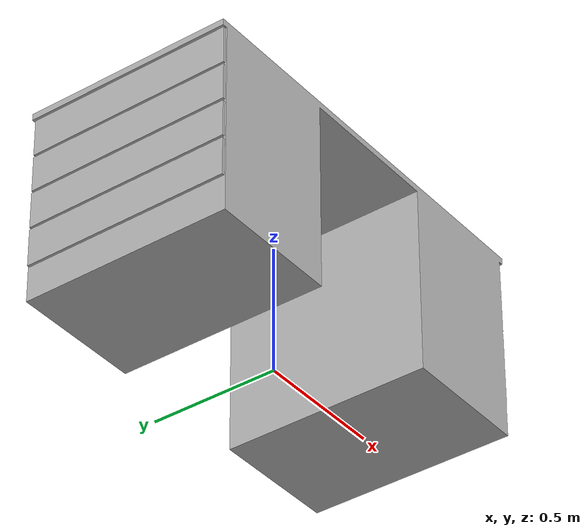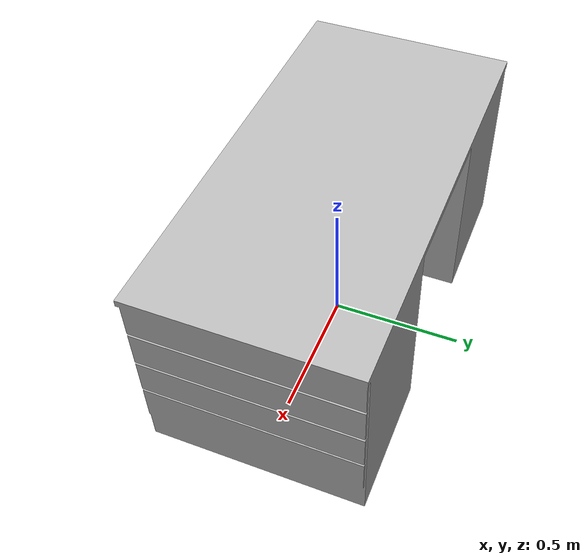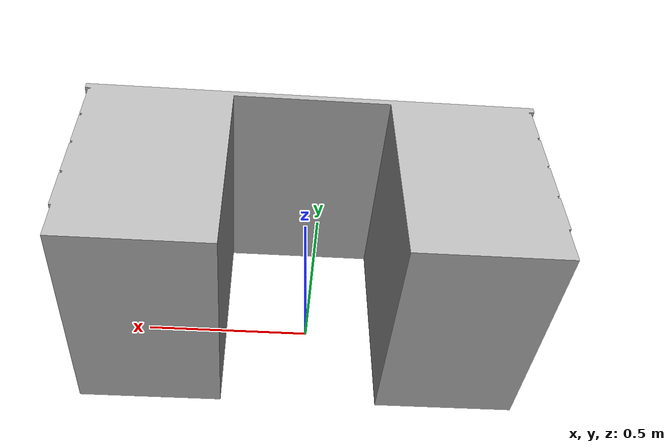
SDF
<?xml version="1.0"?>
<sdf version="1.4">
<model name="stul_160">
	<pose>0 0 0 0 0 0</pose>
	<static>true</static>
	<link name="stul_160_collision">
		<collision name="stul_160_collision">
		<geometry>
			<mesh>
				<uri>model://stul_160/meshes/model.dae</uri>

			</mesh>
		</geometry>
		</collision>
	<visual name="stul_160_mesh">
	<cast_shadows>false</cast_shadows>
		<geometry>
			<mesh>
				<uri> model://stul_160/meshes/model.dae</uri>

			</mesh>
		</geometry>
		<material>
		<script>
			<uri> model://stul_160/material/scripts</uri>
			<uri> model://stul_160/material/textures</uri>
			<name>stul_160/Diffuse</name>
		</script>
		</material>

	</visual>
</link>
</model>
</sdf>
